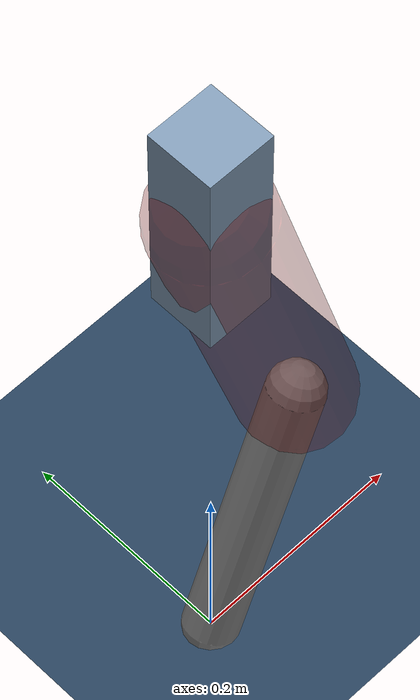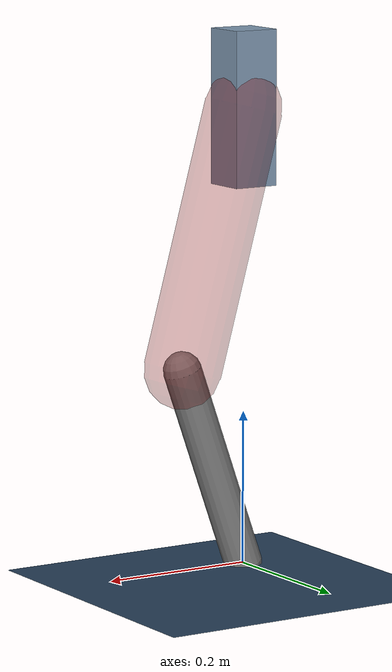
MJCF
<mujoco model="Hopper2D">
	<compiler inertiafromgeom="true" angle="radian" />
	<option timestep="0.001" integrator="implicit" cone="elliptic" solver="Newton" tolerance="1e-10" />

	<default>
		<geom contype="1" conaffinity="1" condim="3" friction="2 0.005 0.0001" solref="0.005 1" />
		<joint limited="true" damping="0.1" />
	</default>

	<asset>
		<texture name="skybox" type="skybox" builtin="gradient" rgb1=".4 .6 .8" rgb2="0 0 0" width="800" height="800" />
		<texture name="grid" type="2d" builtin="checker" rgb1=".1 .2 .3" rgb2=".2 .3 .4" width="300" height="300" mark="edge" markrgb=".2 .3 .4" />
		<material name="ground" texture="grid" texrepeat="1 1" texuniform="true" reflectance="0.1" />
		<material name="leg" rgba="0.5 0.6 0.7 1" />
	</asset>

	<worldbody>

		<geom name="floor" type="plane" size="5 5 0.25" material="ground" />

		<light directional="false" diffuse="0.8 0.8 0.8" specular="0.3 0.3 0.3" pos="0 0 2" dir="0 0 -1" />
		<light mode="targetbodycom" target="base" directional="false" diffuse="0.8 0.8 0.8" specular="0.3 0.3 0.3" pos="0 0 2" dir="0 0 -1" />

		<camera name="fixed" pos="0 -2 1" xyaxes="1 0 0 0 0 1" />
		<camera name="tracking" mode="trackcom" pos="0 -3 1" />

		<body name="root" pos="0 0 0.5952732446653533">
			<joint name="slide_x" type="slide" axis="1 0 0" range="-100 100" />
			<joint name="slide_z" type="slide" axis="0 0 1" range="0 10" />

			<body name="base" pos="0 0 0">
				<geom name="torso" type="box" size="0.03 0.03 0.1" mass="3.1870000000000003" material="leg" />

				<body name="link1" pos="0 0 0" euler="0 1.2997268188850475 0">
					<joint type="hinge" axis="0 -1 0" pos="0 0 0" name="hinge1" limited="true" range="-3.14 3.14" stiffness="0" damping="0.1" />
					<geom name="thigh" type="capsule" fromto="0 0 0 0.34549946215515126 0 0" size="0.05" rgba="0.5 0 0 0.3" mass="1.1139984940344236" />

					<body name="link2" pos="0.34549946215515126 0 0" euler="0 0.6100351289966678 0">
						<joint type="hinge" axis="0 -1 0" pos="0 0 0" name="hinge2" limited="true" range="-3.14 3.14" stiffness="0" damping="0.1" />
						<geom name="shank" type="capsule" fromto="0 0 0 0.2782206728916349 0 0" size="0.025" mass="0.4656765383133079" />

					</body>
				</body>
			</body>
		</body>
	</worldbody>

	<actuator>
		<motor name="torque1" joint="hinge1" ctrlrange="-108.63623937754133 108.63623937754133" ctrllimited="true" gear="1" />
		<motor name="torque2" joint="hinge2" ctrlrange="-117.54670418568811 117.54670418568811" ctrllimited="true" gear="1" />
	</actuator>
</mujoco>
